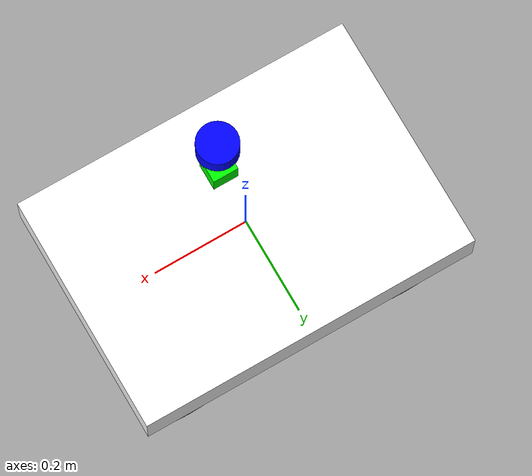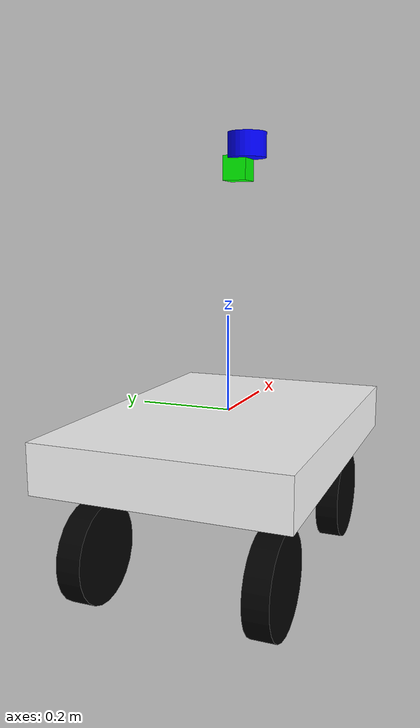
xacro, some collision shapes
<?xml version="1.0"?>

<robot name="NaviBot" xmlns:xacro="http://www.ros.org/wiki/xacro">

  <xacro:property name="length_wheel" value="0.05" />
  <xacro:property name="radius_wheel" value="0.1" />
  <xacro:property name="PI" value="3.1415926"/>
  <xacro:macro name="default_inertial" params="mass">
    <inertial>
      <mass value="${mass}" />
      <inertia ixx="0.01" ixy="0.0" ixz="0.0"
                    iyy="0.01" iyz="0.0" izz="0.01" />
    </inertial>
  </xacro:macro>

  <!-- base_link to lidar_link transform (hardcoded from measurement) -->
  <xacro:property name="lidar_xyz" value="0.055 0.0 0.50" />
  <xacro:property name="lidar_rpy" value="0.0 0.0 0.0" />

  <!-- LiDAR extrinsic w.r.t. IMU (from fastlio_mid360_real.yaml). -->
  <xacro:property name="lidar_offset_xyz" value="-0.011 -0.02329 0.04412" />
  <xacro:property name="lidar_offset_rpy" value="0.0 0.0 0.0" />

  <!-- lidar_link to camera_link transform (placeholder values) -->
  <xacro:property name="camera_xyz" value="0.197 0.012 -0.110" />
  <xacro:property name="camera_rpy" value="-0.019 0.048 0.004" />

  <link name="base_link">
    <visual>
      <geometry>
        <box size="0.72 .5 .1"/>
      </geometry>
      <origin rpy="0 0 0" xyz="0 0 -0.05"/>
      <material name="white">
        <color rgba="1 1 1 1"/>
      </material>
    </visual>
    <collision>
      <geometry>
        <box size="0.72 .5 .1"/>
      </geometry>
      <origin rpy="0 0 0" xyz="0 0 -0.05"/>
    </collision>
    <xacro:default_inertial mass="8.2"/>
  </link>

  <link name="left_front_wheel_link">
    <visual>
      <geometry>
        <cylinder length="${length_wheel}" radius="${radius_wheel}"/>
      </geometry>
      <origin rpy="0 0 0" xyz="0 0 0"/>
      <material name="black">
        <color rgba="0 0 0 1"/>
      </material>
    </visual>
    <collision>
      <geometry>
        <cylinder length="${length_wheel}" radius="${radius_wheel}"/>
      </geometry>
    </collision>
    <mu1>0.5</mu1>
    <mu2>0.5</mu2>
    <xacro:default_inertial mass="0.5"/>
  </link>

  <link name="left_rear_wheel_link">
    <visual>
      <geometry>
        <cylinder length="${length_wheel}" radius="${radius_wheel}"/>
      </geometry>
      <origin rpy="0 0 0" xyz="0 0 0"/>
      <material name="black"/>
    </visual>
    <collision>
      <geometry>
        <cylinder length="${length_wheel}" radius="${radius_wheel}"/>
      </geometry>
    </collision>
    <mu1>0.5</mu1>
    <mu2>0.5</mu2>
    <xacro:default_inertial mass="0.5"/>
  </link>

  <link name="right_front_wheel_link">
    <visual>
      <geometry>
        <cylinder length="${length_wheel}" radius="${radius_wheel}"/>
      </geometry>
      <origin rpy="0 0 0" xyz="0 0 0"/>
      <material name="black"/>
    </visual>
    <collision>
      <geometry>
        <cylinder length="${length_wheel}" radius="${radius_wheel}"/>
      </geometry>
    </collision>
    <mu1>0.5</mu1>
    <mu2>0.5</mu2>
    <xacro:default_inertial mass="0.5"/>
  </link>

  <link name="right_rear_wheel_link">
    <visual>
      <geometry>
        <cylinder length="${length_wheel}" radius="${radius_wheel}"/>
      </geometry>
      <origin rpy="0 0 0" xyz="0 0 0" />
      <material name="black"/>
    </visual>
    <collision>
      <geometry>
        <cylinder length="${length_wheel}" radius="${radius_wheel}"/>
      </geometry>
    </collision>
    <mu1>0.5</mu1>
    <mu2>0.5</mu2>
    <xacro:default_inertial mass="0.5"/>
  </link>

  <joint name="base_to_left_front_wheel" type="fixed">
    <parent link="base_link"/>
    <child link="left_front_wheel_link"/>
    <origin rpy="${-PI/2} 0 0" xyz="0.247 0.182 -0.245"/>
    <axis xyz="0 0 1" />
  </joint>

  <joint name="base_to_left_rear_wheel" type="fixed">
    <axis xyz="0 0 1" />
    <anchor xyz="0 0 0" />
    <limit effort="100" velocity="100" />
    <parent link="base_link"/>
    <child link="left_rear_wheel_link"/>
    <origin rpy="${-PI/2} 0 0" xyz="-0.247 0.182 -0.245"/>
  </joint>

  <joint name="base_to_right_front_wheel" type="fixed">
    <parent link="base_link"/>
    <axis xyz="0 0 1" />
    <child link="right_front_wheel_link"/>
    <origin rpy="${-PI/2} 0 0" xyz="0.247 -0.182 -0.245"/>
  </joint>

  <joint name="base_to_right_rear_wheel" type="fixed">
    <parent link="base_link"/>
    <axis xyz="0 0 1" />
    <child link="right_rear_wheel_link"/>
    <origin rpy="${-PI/2} 0 0" xyz="-0.247 -0.182 -0.245"/>
  </joint>

  <!-- IMU joint (co-located with Livox Mid360) -->
  <joint name="imu_joint" type="fixed">
    <axis xyz="0 1 0" />
    <origin xyz="${lidar_xyz}" rpy="${lidar_rpy}"/>
    <parent link="base_link"/>
    <child link="imu_link"/>
  </joint>

  <!-- IMU link (co-located with Livox Mid360) -->
  <link name="imu_link">
    <collision>
      <origin xyz="0 0 0" rpy="0 0 0"/>
      <geometry>
        <box size="0.05 0.05 0.05"/>
      </geometry>
    </collision>
    <visual>
      <origin xyz="0 0 0" rpy="0 0 0"/>
      <geometry>
        <box size="0.05 0.05 0.05"/>
      </geometry>
      <material name="green">
        <color rgba="0 1 0 1"/>
      </material>
    </visual>
    <inertial>
      <mass value="1e-2" />
      <origin xyz="0 0 0" rpy="0 0 0"/>
      <inertia ixx="1e-6" ixy="0" ixz="0" iyy="1e-6" iyz="0" izz="1e-6" />
    </inertial>
  </link>

  <!-- Livox Mid360 LiDAR -->
  <joint name="lidar_joint" type="fixed">
    <origin xyz="${lidar_offset_xyz}" rpy="${lidar_offset_rpy}" />
    <parent link="imu_link"/>
    <child link="lidar_link"/>
  </joint>

  <link name="lidar_link">
    <visual>
      <origin xyz="0.025 -0.0265 -0.025" rpy="${PI/2} 0 ${PI}"/>
      <geometry>
        <mesh filename="package://navibot_simulation/meshes/mid360.stl" scale="0.001 0.001 0.001"/>
      </geometry>
      <material name="blue">
        <color rgba="0 0 1.0 1" />
      </material>
    </visual>
    <collision>
      <origin xyz="0 0 0" rpy="0 0 0"/>
      <geometry>
        <cylinder length="0.05" radius="0.04"/>
      </geometry>
    </collision>
    <xacro:default_inertial mass="0.3"/>
  </link>

  <!-- Camera joint (from lidar_link to camera_link) -->
  <joint name="camera_joint" type="fixed">
    <origin xyz="${camera_xyz}" rpy="${camera_rpy}" />
    <parent link="lidar_link"/>
    <child link="camera_link"/>
  </joint>

  <!-- Camera link -->
  <link name="camera_link">
    <inertial>
      <mass value="0.1" />
      <origin xyz="0 0 0" rpy="0 0 0"/>
      <inertia ixx="1e-6" ixy="0" ixz="0" iyy="1e-6" iyz="0" izz="1e-6" />
    </inertial>
  </link>

</robot>
